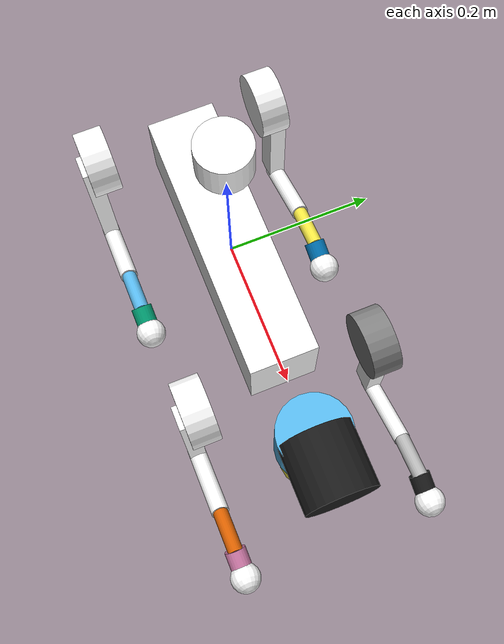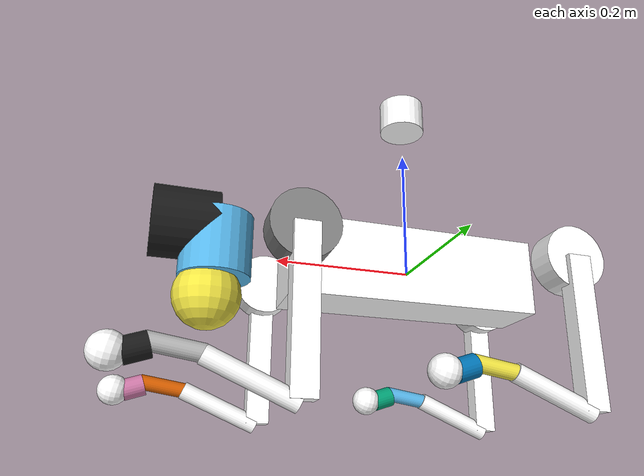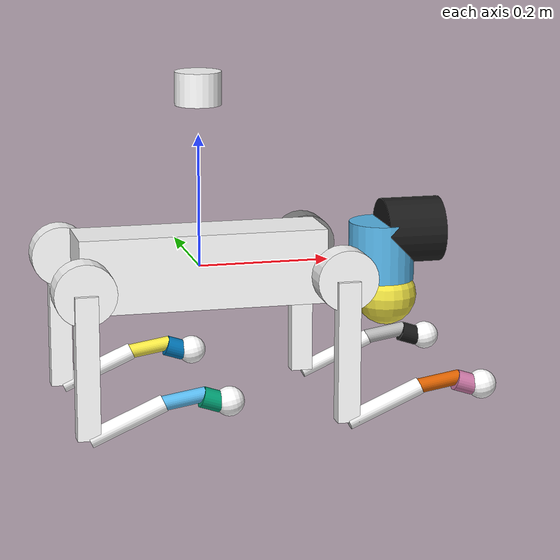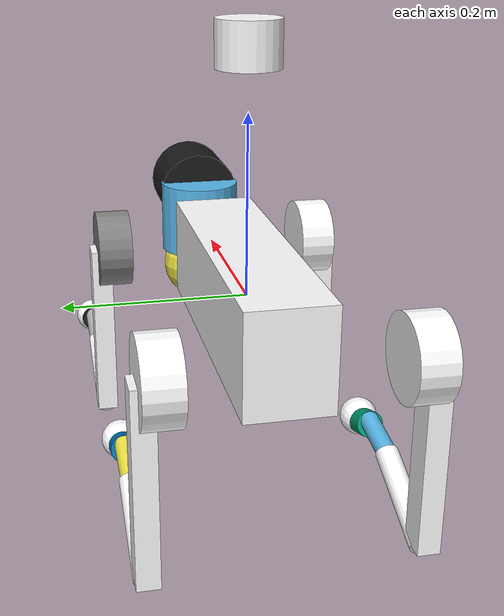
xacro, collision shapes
<?xml version="1.0" encoding="utf-8"?>
<robot name="go2" xmlns:xacro="http://www.ros.org/wiki/xacro">

  <xacro:arg name="camera_name"   default="zed"/>
  <xacro:arg name="camera_model"  default="zed2i"/>   <!-- zed, zed2i, zedm, zedx, zedxm … -->
  <xacro:arg name="use_zed_localization" default="false"/>

  <link
    name="base_link">
    <inertial>
      <origin
        xyz="0.021112 0 -0.005366"
        rpy="0 0 0" />
      <mass
        value="6.921" />
      <inertia
        ixx="0.02448"
        ixy="0.00012166"
        ixz="0.0014849"
        iyy="0.098077"
        iyz="-3.12E-05"
        izz="0.107" />
    </inertial>
    <visual>
      <origin
        xyz="0 0 0"
        rpy="0 0 0" />
      <geometry>
        <mesh
          filename="package://go2_description/dae/base.dae" />
      </geometry>
      <material
        name="black">
        <color
          rgba="1 1 1 1" />
      </material>
    </visual>
    <collision>
      <origin rpy="0 0 0" xyz="0 0 0" />
      <geometry>
        <box size="0.3762 0.0935 0.114" />
      </geometry>
    </collision>
  </link>

  <link
    name="Head_upper">
    <inertial>
      <origin
        xyz="0 0 0"
        rpy="0 0 0" />
      <mass
        value="0.001" />
      <inertia
        ixx="9.6e-06"
        ixy="0"
        ixz="0"
        iyy="9.6e-06"
        iyz="0"
        izz="9.6e-06" />
    </inertial>
    <collision>
      <origin
        xyz="0 0 0"
        rpy="0 0 0" />
      <geometry>
        <cylinder radius="0.05" length="0.09" />
      </geometry>
    </collision>
  </link>
  <joint
    name="Head_upper_joint"
    type="fixed" dont_collapse="true">
    <origin
      xyz="0.285 0 0.01"
      rpy="0 0 0" />
    <parent
      link="base_link" />
    <child
      link="Head_upper" />
    <axis
      xyz="0 0 0" />
  </joint>
  <link name="front_camera">
    <visual>
      <origin xyz="0 0 0" rpy="0 0 0" />
      <geometry>
        <cylinder radius="0.01" length="0.01" />
      </geometry>
      <material name="camera_color">
        <color rgba="0.1 0.1 0.1 1" />
      </material>
    </visual>
    <collision>
      <origin xyz="0 0 0" rpy="0 0 0" />
      <geometry>
        <cylinder radius="0.05" length="0.09" />
      </geometry>
    </collision>
  </link>
  <joint name="front_camera_joint" type="fixed">
    <origin xyz="0.045 0 0.03" rpy="-1.5708 0 -1.5708" />
    <parent link="Head_upper" />
    <child link="front_camera" />
    <axis xyz="0 0 0" />
  </joint>
  <link
    name="Head_lower">
    <inertial>
      <origin
        xyz="0 0 0"
        rpy="0 0 0" />
      <mass
        value="0.001" />
      <inertia
        ixx="9.6e-06"
        ixy="0"
        ixz="0"
        iyy="9.6e-06"
        iyz="0"
        izz="9.6e-06" />
    </inertial>
    <collision>
      <origin
        xyz="0 0 0"
        rpy="0 0 0" />
      <geometry>
        <sphere radius="0.047" />
      </geometry>
    </collision>
  </link>
  <joint
    name="Head_lower_joint"
    type="fixed" dont_collapse="true">
    <origin
      xyz="0.008 0 -0.07"
      rpy="0 0 0" />
    <parent
      link="Head_upper" />
    <child
      link="Head_lower" />
    <axis
      xyz="0 0 0" />
  </joint>
  <link
    name="FL_hip">
    <inertial>
      <origin
        xyz="-0.0054 0.00194 -0.000105"
        rpy="0 0 0" />
      <mass
        value="0.678" />
      <inertia
        ixx="0.00048"
        ixy="-3.01E-06"
        ixz="1.11E-06"
        iyy="0.000884"
        iyz="-1.42E-06"
        izz="0.000596" />
    </inertial>
    <visual>
      <origin
        xyz="0 0 0"
        rpy="0 0 0" />
      <geometry>
        <mesh
          filename="package://go2_description/dae/hip.dae" />
      </geometry>
      <material
        name="grey">
        <color
          rgba="0.5 0.5 0.5 1" />
      </material>
    </visual>
    <collision>
      <origin rpy="1.5707963267948966 0 0" xyz="0 0.08 0" />
      <geometry>
        <cylinder length="0.04" radius="0.046" />
      </geometry>
    </collision>
  </link>
  <joint
    name="FL_hip_joint"
    type="revolute">
    <origin
      xyz="0.1934 0.0465 0"
      rpy="0 0 0" />
    <parent
      link="base_link" />
    <child
      link="FL_hip" />
    <axis
      xyz="1 0 0" />
    <limit
      lower="-1.0472"
      upper="1.0472"
      effort="23.7"
      velocity="30.1" />
  </joint>
  <link
    name="FL_thigh">
    <inertial>
      <origin
        xyz="-0.00374 -0.0223 -0.0327"
        rpy="0 0 0" />
      <mass
        value="1.152" />
      <inertia
        ixx="0.00584"
        ixy="8.72E-05"
        ixz="-0.000289"
        iyy="0.0058"
        iyz="0.000808"
        izz="0.00103" />
    </inertial>
    <visual>
      <origin
        xyz="0 0 0"
        rpy="0 0 0" />
      <geometry>
        <mesh
          filename="package://go2_description/dae/thigh.dae" />
      </geometry>
      <material
        name="">
        <color
          rgba="1 1 1 1" />
      </material>
    </visual>
    <collision>
      <origin rpy="0 1.5707963267948966 0" xyz="0 0 -0.1065" />
      <geometry>
        <box size="0.213 0.0245 0.034" />
      </geometry>
    </collision>
  </link>
  <joint
    name="FL_thigh_joint"
    type="revolute">
    <origin
      xyz="0 0.0955 0"
      rpy="0 0 0" />
    <parent
      link="FL_hip" />
    <child
      link="FL_thigh" />
    <axis
      xyz="0 1 0" />
    <limit
      lower="-1.5708"
      upper="3.4907"
      effort="23.7"
      velocity="30.1" />
  </joint>
  <link
    name="FL_calf">
    <inertial>
      <origin
        xyz="0.00548 -0.000975 -0.115"
        rpy="0 0 0" />
      <mass
        value="0.154" />
      <inertia
        ixx="0.00108"
        ixy="3.4E-07"
        ixz="1.72E-05"
        iyy="0.0011"
        iyz="8.28E-06"
        izz="3.29E-05" />
    </inertial>
    <visual>
      <origin
        xyz="0 0 0"
        rpy="0 0 0" />
      <geometry>
        <mesh
          filename="package://go2_description/dae/calf.dae" />
      </geometry>
      <material
        name="">
        <color
          rgba="1 1 1 1" />
      </material>
    </visual>
    <collision>
      <origin rpy="0 -0.21 0" xyz="0.008 0 -0.06" />
      <geometry>
        <cylinder length="0.12" radius="0.012" />
      </geometry>
    </collision>
  </link>
  <joint
    name="FL_calf_joint"
    type="revolute">
    <origin
      xyz="0 0 -0.213"
      rpy="0 0 0" />
    <parent
      link="FL_thigh" />
    <child
      link="FL_calf" />
    <axis
      xyz="0 1 0" />
    <limit
      lower="-2.7227"
      upper="-0.83776"
      effort="45.43"
      velocity="15.70" />
  </joint>
  <link
    name="FL_calflower">
    <collision>
      <origin rpy="0 0 0" xyz="0 0 0" />
      <geometry>
        <cylinder length="0.065" radius="0.011" />
      </geometry>
    </collision>
  </link>
  <joint
    name="FL_calflower_joint"
    type="fixed">
    <origin
      xyz="0.020 0 -0.148"
      rpy="0 0.05 0" />
    <parent
      link="FL_calf" />
    <child
      link="FL_calflower" />
    <axis
      xyz="0 0 0" />
  </joint>
  <link
    name="FL_calflower1">
    <visual>
      <origin xyz="0 0 0" rpy="0 0 0" />
      <geometry>
        <cylinder length="0.03" radius="0.0155" />
      </geometry>
      <material name="camera_color">
        <color rgba="0.1 0.1 0.1 1" />
      </material>
    </visual>
    <collision>
      <origin rpy="0 0 0" xyz="0 0 0" />
      <geometry>
        <cylinder length="0.03" radius="0.0155" />
      </geometry>
    </collision>
  </link>
  <joint
    name="FL_calflower1_joint"
    type="fixed">
    <origin
      xyz="-0.01 0 -0.04"
      rpy="0 0.48 0" />
    <parent
      link="FL_calflower" />
    <child
      link="FL_calflower1" />
    <axis
      xyz="0 0 0" />
  </joint>
  <link
    name="FL_foot">
    <inertial>
      <origin
        xyz="0 0 0"
        rpy="0 0 0" />
      <mass
        value="0.04" />
      <inertia
        ixx="9.6e-06"
        ixy="0"
        ixz="0"
        iyy="9.6e-06"
        iyz="0"
        izz="9.6e-06" />
    </inertial>
    <visual>
      <origin
        xyz="0 0 0"
        rpy="0 0 0" />
      <geometry>
        <mesh
          filename="package://go2_description/dae/foot.dae" />
      </geometry>
      <material
        name="">
        <color
          rgba="1 1 1 1" />
      </material>
    </visual>
    <collision>
      <origin rpy="0 0 0" xyz="-0.002 0 0" />
      <geometry>
        <sphere radius="0.022" />
      </geometry>
    </collision>
  </link>
  <joint
    name="FL_foot_joint"
    type="fixed" dont_collapse="true">
    <origin
      xyz="0 0 -0.213"
      rpy="0 0 0" />
    <parent
      link="FL_calf" />
    <child
      link="FL_foot" />
    <axis
      xyz="0 0 0" />
  </joint>
  <link
    name="FR_hip">
    <inertial>
      <origin
        xyz="-0.0054 -0.00194 -0.000105"
        rpy="0 0 0" />
      <mass
        value="0.678" />
      <inertia
        ixx="0.00048"
        ixy="3.01E-06"
        ixz="1.11E-06"
        iyy="0.000884"
        iyz="1.42E-06"
        izz="0.000596" />
    </inertial>
    <visual>
      <origin
        xyz="0 0 0"
        rpy="3.1415 0 0" />
      <geometry>
        <mesh
          filename="package://go2_description/dae/hip.dae" />
      </geometry>
      <material
        name="">
        <color
          rgba="1 1 1 1" />
      </material>
    </visual>
    <collision>
      <origin rpy="1.5707963267948966 0 0" xyz="0 -0.08 0" />
      <geometry>
        <cylinder length="0.04" radius="0.046" />
      </geometry>
    </collision>
  </link>
  <joint
    name="FR_hip_joint"
    type="revolute">
    <origin
      xyz="0.1934 -0.0465 0"
      rpy="0 0 0" />
    <parent
      link="base_link" />
    <child
      link="FR_hip" />
    <axis
      xyz="1 0 0" />
    <limit
      lower="-1.0472"
      upper="1.0472"
      effort="23.7"
      velocity="30.1" />
  </joint>
  <link
    name="FR_thigh">
    <inertial>
      <origin
        xyz="-0.00374 0.0223 -0.0327"
        rpy="0 0 0" />
      <mass
        value="1.152" />
      <inertia
        ixx="0.00584"
        ixy="-8.72E-05"
        ixz="-0.000289"
        iyy="0.0058"
        iyz="-0.000808"
        izz="0.00103" />
    </inertial>
    <visual>
      <origin
        xyz="0 0 0"
        rpy="0 0 0" />
      <geometry>
        <mesh
          filename="package://go2_description/dae/thigh_mirror.dae" />
      </geometry>
      <material
        name="">
        <color
          rgba="1 1 1 1" />
      </material>
    </visual>
    <collision>
      <origin rpy="0 1.5707963267948966 0" xyz="0 0 -0.1065" />
      <geometry>
        <box size="0.213 0.0245 0.034" />
      </geometry>
    </collision>
  </link>
  <joint
    name="FR_thigh_joint"
    type="revolute">
    <origin
      xyz="0 -0.0955 0"
      rpy="0 0 0" />
    <parent
      link="FR_hip" />
    <child
      link="FR_thigh" />
    <axis
      xyz="0 1 0" />
    <limit
      lower="-1.5708"
      upper="3.4907"
      effort="23.7"
      velocity="30.1" />
  </joint>
  <link
    name="FR_calf">
    <inertial>
      <origin
        xyz="0.00548 0.000975 -0.115"
        rpy="0 0 0" />
      <mass
        value="0.154" />
      <inertia
        ixx="0.00108"
        ixy="-3.4E-07"
        ixz="1.72E-05"
        iyy="0.0011"
        iyz="-8.28E-06"
        izz="3.29E-05" />
    </inertial>
    <visual>
      <origin
        xyz="0 0 0"
        rpy="0 0 0" />
      <geometry>
        <mesh
          filename="package://go2_description/dae/calf_mirror.dae" />
      </geometry>
      <material
        name="">
        <color
          rgba="1 1 1 1" />
      </material>
    </visual>
    <collision>
      <origin rpy="0 -0.2 0" xyz="0.01 0 -0.06" />
      <geometry>
        <cylinder length="0.12" radius="0.013" />
      </geometry>
    </collision>
  </link>
  <joint
    name="FR_calf_joint"
    type="revolute">
    <origin
      xyz="0 0 -0.213"
      rpy="0 0 0" />
    <parent
      link="FR_thigh" />
    <child
      link="FR_calf" />
    <axis
      xyz="0 1 0" />
    <limit
      lower="-2.7227"
      upper="-0.83776"
      effort="45.43"
      velocity="15.70" />
  </joint>
  <link
    name="FR_calflower">
    <collision>
      <origin rpy="0 0 0" xyz="0 0 0" />
      <geometry>
        <cylinder length="0.065" radius="0.011" />
      </geometry>
    </collision>
  </link>
  <joint
    name="FR_calflower_joint"
    type="fixed">
    <origin
      xyz="0.020 0 -0.148"
      rpy="0 0.05 0" />
    <parent
      link="FR_calf" />
    <child
      link="FR_calflower" />
    <axis
      xyz="0 0 0" />
  </joint>
  <link
    name="FR_calflower1">
    <collision>
      <origin rpy="0 0 0" xyz="0 0 0" />
      <geometry>
        <cylinder length="0.03" radius="0.0155" />
      </geometry>
    </collision>
  </link>
  <joint
    name="FR_calflower1_joint"
    type="fixed">
    <origin
      xyz="-0.01 0 -0.04"
      rpy="0 0.48 0" />
    <parent
      link="FR_calflower" />
    <child
      link="FR_calflower1" />
    <axis
      xyz="0 0 0" />
  </joint>
  <link
    name="FR_foot">
    <inertial>
      <origin
        xyz="0 0 0"
        rpy="0 0 0" />
      <mass
        value="0.04" />
      <inertia
        ixx="9.6e-06"
        ixy="0"
        ixz="0"
        iyy="9.6e-06"
        iyz="0"
        izz="9.6e-06" />
    </inertial>
    <visual>
      <origin
        xyz="0 0 0"
        rpy="0 0 0" />
      <geometry>
        <mesh
          filename="package://go2_description/dae/foot.dae" />
      </geometry>
      <material
        name="">
        <color
          rgba="1 1 1 1" />
      </material>
    </visual>
    <collision>
      <origin rpy="0 0 0" xyz="-0.002 0 0" />
      <geometry>
        <sphere radius="0.022" />
      </geometry>
    </collision>
  </link>
  <joint
    name="FR_foot_joint"
    type="fixed" dont_collapse="true">
    <origin
      xyz="0 0 -0.213"
      rpy="0 0 0" />
    <parent
      link="FR_calf" />
    <child
      link="FR_foot" />
    <axis
      xyz="0 0 0" />
  </joint>
  <link
    name="RL_hip">
    <inertial>
      <origin
        xyz="0.0054 0.00194 -0.000105"
        rpy="0 0 0" />
      <mass
        value="0.678" />
      <inertia
        ixx="0.00048"
        ixy="3.01E-06"
        ixz="-1.11E-06"
        iyy="0.000884"
        iyz="-1.42E-06"
        izz="0.000596" />
    </inertial>
    <visual>
      <origin
        xyz="0 0 0"
        rpy="0 3.1415 0" />
      <geometry>
        <mesh
          filename="package://go2_description/dae/hip.dae" />
      </geometry>
      <material
        name="">
        <color
          rgba="1 1 1 1" />
      </material>
    </visual>
    <collision>
      <origin rpy="1.5707963267948966 0 0" xyz="0 0.08 0" />
      <geometry>
        <cylinder length="0.04" radius="0.046" />
      </geometry>
    </collision>
  </link>
  <joint
    name="RL_hip_joint"
    type="revolute">
    <origin
      xyz="-0.1934 0.0465 0"
      rpy="0 0 0" />
    <parent
      link="base_link" />
    <child
      link="RL_hip" />
    <axis
      xyz="1 0 0" />
    <limit
      lower="-1.0472"
      upper="1.0472"
      effort="23.7"
      velocity="30.1" />
  </joint>
  <link
    name="RL_thigh">
    <inertial>
      <origin
        xyz="-0.00374 -0.0223 -0.0327"
        rpy="0 0 0" />
      <mass
        value="1.152" />
      <inertia
        ixx="0.00584"
        ixy="8.72E-05"
        ixz="-0.000289"
        iyy="0.0058"
        iyz="0.000808"
        izz="0.00103" />
    </inertial>
    <visual>
      <origin
        xyz="0 0 0"
        rpy="0 0 0" />
      <geometry>
        <mesh
          filename="package://go2_description/dae/thigh.dae" />
      </geometry>
      <material
        name="">
        <color
          rgba="1 1 1 1" />
      </material>
    </visual>
    <collision>
      <origin rpy="0 1.5707963267948966 0" xyz="0 0 -0.1065" />
      <geometry>
        <box size="0.213 0.0245 0.034" />
      </geometry>
    </collision>
  </link>
  <joint
    name="RL_thigh_joint"
    type="revolute">
    <origin
      xyz="0 0.0955 0"
      rpy="0 0 0" />
    <parent
      link="RL_hip" />
    <child
      link="RL_thigh" />
    <axis
      xyz="0 1 0" />
    <limit
      lower="-0.5236"
      upper="4.5379"
      effort="23.7"
      velocity="30.1" />
  </joint>
  <link
    name="RL_calf">
    <inertial>
      <origin
        xyz="0.00548 -0.000975 -0.115"
        rpy="0 0 0" />
      <mass
        value="0.154" />
      <inertia
        ixx="0.00108"
        ixy="3.4E-07"
        ixz="1.72E-05"
        iyy="0.0011"
        iyz="8.28E-06"
        izz="3.29E-05" />
    </inertial>
    <visual>
      <origin
        xyz="0 0 0"
        rpy="0 0 0" />
      <geometry>
        <mesh
          filename="package://go2_description/dae/calf.dae" />
      </geometry>
      <material
        name="">
        <color
          rgba="1 1 1 1" />
      </material>
    </visual>
    <collision>
      <origin rpy="0 -0.2 0" xyz="0.01 0 -0.06" />
      <geometry>
        <cylinder length="0.12" radius="0.013" />
      </geometry>
    </collision>
  </link>
  <joint
    name="RL_calf_joint"
    type="revolute">
    <origin
      xyz="0 0 -0.213"
      rpy="0 0 0" />
    <parent
      link="RL_thigh" />
    <child
      link="RL_calf" />
    <axis
      xyz="0 1 0" />
    <limit
      lower="-2.7227"
      upper="-0.83776"
      effort="45.43"
      velocity="15.70" />
  </joint>
  <link
    name="RL_calflower">
    <collision>
      <origin rpy="0 0 0" xyz="0 0 0" />
      <geometry>
        <cylinder length="0.065" radius="0.011" />
      </geometry>
    </collision>
  </link>
  <joint
    name="RL_calflower_joint"
    type="fixed">
    <origin
      xyz="0.020 0 -0.148"
      rpy="0 0.05 0" />
    <parent
      link="RL_calf" />
    <child
      link="RL_calflower" />
    <axis
      xyz="0 0 0" />
  </joint>
  <link
    name="RL_calflower1">
    <collision>
      <origin rpy="0 0 0" xyz="0 0 0" />
      <geometry>
        <cylinder length="0.03" radius="0.0155" />
      </geometry>
    </collision>
  </link>
  <joint
    name="RL_calflower1_joint"
    type="fixed">
    <origin
      xyz="-0.01 0 -0.04"
      rpy="0 0.48 0" />
    <parent
      link="RL_calflower" />
    <child
      link="RL_calflower1" />
    <axis
      xyz="0 0 0" />
  </joint>
  <link
    name="RL_foot">
    <inertial>
      <origin
        xyz="0 0 0"
        rpy="0 0 0" />
      <mass
        value="0.04" />
      <inertia
        ixx="9.6e-06"
        ixy="0"
        ixz="0"
        iyy="9.6e-06"
        iyz="0"
        izz="9.6e-06" />
    </inertial>
    <visual>
      <origin
        xyz="0 0 0"
        rpy="0 0 0" />
      <geometry>
        <mesh
          filename="package://go2_description/dae/foot.dae" />
      </geometry>
      <material
        name="">
        <color
          rgba="1 1 1 1" />
      </material>
    </visual>
    <collision>
      <origin rpy="0 0 0" xyz="-0.002 0 0" />
      <geometry>
        <sphere radius="0.022" />
      </geometry>
    </collision>
  </link>
  <joint
    name="RL_foot_joint"
    type="fixed" dont_collapse="true">
    <origin
      xyz="0 0 -0.213"
      rpy="0 0 0" />
    <parent
      link="RL_calf" />
    <child
      link="RL_foot" />
    <axis
      xyz="0 0 0" />
  </joint>
  <link
    name="RR_hip">
    <inertial>
      <origin
        xyz="0.0054 -0.00194 -0.000105"
        rpy="0 0 0" />
      <mass
        value="0.678" />
      <inertia
        ixx="0.00048"
        ixy="-3.01E-06"
        ixz="-1.11E-06"
        iyy="0.000884"
        iyz="1.42E-06"
        izz="0.000596" />
    </inertial>
    <visual>
      <origin
        xyz="0 0 0"
        rpy="3.1415 3.1415 0" />
      <geometry>
        <mesh
          filename="package://go2_description/dae/hip.dae" />
      </geometry>
      <material
        name="">
        <color
          rgba="1 1 1 1" />
      </material>
    </visual>
    <collision>
      <origin rpy="1.5707963267948966 0 0" xyz="0 -0.08 0" />
      <geometry>
        <cylinder length="0.04" radius="0.046" />
      </geometry>
    </collision>
  </link>
  <joint
    name="RR_hip_joint"
    type="revolute">
    <origin
      xyz="-0.1934 -0.0465 0"
      rpy="0 0 0" />
    <parent
      link="base_link" />
    <child
      link="RR_hip" />
    <axis
      xyz="1 0 0" />
    <limit
      lower="-1.0472"
      upper="1.0472"
      effort="23.7"
      velocity="30.1" />
  </joint>
  <link
    name="RR_thigh">
    <inertial>
      <origin
        xyz="-0.00374 0.0223 -0.0327"
        rpy="0 0 0" />
      <mass
        value="1.152" />
      <inertia
        ixx="0.00584"
        ixy="-8.72E-05"
        ixz="-0.000289"
        iyy="0.0058"
        iyz="-0.000808"
        izz="0.00103" />
    </inertial>
    <visual>
      <origin
        xyz="0 0 0"
        rpy="0 0 0" />
      <geometry>
        <mesh
          filename="package://go2_description/dae/thigh_mirror.dae" />
      </geometry>
      <material
        name="">
        <color
          rgba="1 1 1 1" />
      </material>
    </visual>
    <collision>
      <origin rpy="0 1.5707963267948966 0" xyz="0 0 -0.1065" />
      <geometry>
        <box size="0.213 0.0245 0.034" />
      </geometry>
    </collision>
  </link>
  <joint
    name="RR_thigh_joint"
    type="revolute">
    <origin
      xyz="0 -0.0955 0"
      rpy="0 0 0" />
    <parent
      link="RR_hip" />
    <child
      link="RR_thigh" />
    <axis
      xyz="0 1 0" />
    <limit
      lower="-0.5236"
      upper="4.5379"
      effort="23.7"
      velocity="30.1" />
  </joint>
  <link
    name="RR_calf">
    <inertial>
      <origin
        xyz="0.00548 0.000975 -0.115"
        rpy="0 0 0" />
      <mass
        value="0.154" />
      <inertia
        ixx="0.00108"
        ixy="-3.4E-07"
        ixz="1.72E-05"
        iyy="0.0011"
        iyz="-8.28E-06"
        izz="3.29E-05" />
    </inertial>
    <visual>
      <origin
        xyz="0 0 0"
        rpy="0 0 0" />
      <geometry>
        <mesh
          filename="package://go2_description/dae/calf_mirror.dae" />
      </geometry>
      <material
        name="">
        <color
          rgba="1 1 1 1" />
      </material>
    </visual>
    <collision>
      <origin rpy="0 -0.2 0" xyz="0.01 0 -0.06" />
      <geometry>
        <cylinder length="0.12" radius="0.013" />
      </geometry>
    </collision>
  </link>
  <joint
    name="RR_calf_joint"
    type="revolute">
    <origin
      xyz="0 0 -0.213"
      rpy="0 0 0" />
    <parent
      link="RR_thigh" />
    <child
      link="RR_calf" />
    <axis
      xyz="0 1 0" />
    <limit
      lower="-2.7227"
      upper="-0.83776"
      effort="45.43"
      velocity="15.70" />
  </joint>
  <link
    name="RR_calflower">
    <collision>
      <origin rpy="0 0 0" xyz="0 0 0" />
      <geometry>
        <cylinder length="0.065" radius="0.011" />
      </geometry>
    </collision>
  </link>
  <joint
    name="RR_calflower_joint"
    type="fixed">
    <origin
      xyz="0.020 0 -0.148"
      rpy="0 0.05 0" />
    <parent
      link="RR_calf" />
    <child
      link="RR_calflower" />
    <axis
      xyz="0 0 0" />
  </joint>
  <link
    name="RR_calflower1">
    <collision>
      <origin rpy="0 0 0" xyz="0 0 0" />
      <geometry>
        <cylinder length="0.03" radius="0.0155" />
      </geometry>
    </collision>
  </link>
  <joint
    name="RR_calflower1_joint"
    type="fixed">
    <origin
      xyz="-0.01 0 -0.04"
      rpy="0 0.48 0" />
    <parent
      link="RR_calflower" />
    <child
      link="RR_calflower1" />
    <axis
      xyz="0 0 0" />
  </joint>
  <link
    name="RR_foot">
    <inertial>
      <origin
        xyz="0 0 0"
        rpy="0 0 0" />
      <mass
        value="0.04" />
      <inertia
        ixx="9.6e-06"
        ixy="0"
        ixz="0"
        iyy="9.6e-06"
        iyz="0"
        izz="9.6e-06" />
    </inertial>
    <visual>
      <origin
        xyz="0 0 0"
        rpy="0 0 0" />
      <geometry>
        <mesh
          filename="package://go2_description/dae/foot.dae" />
      </geometry>
      <material
        name="">
        <color
          rgba="1 1 1 1" />
      </material>
    </visual>
    <collision>
      <origin rpy="0 0 0" xyz="-0.002 0 0" />
      <geometry>
        <sphere radius="0.022" />
      </geometry>
    </collision>
  </link>
  <joint
    name="RR_foot_joint"
    type="fixed" dont_collapse="true">
    <origin
      xyz="0 0 -0.213"
      rpy="0 0 0" />
    <parent
      link="RR_calf" />
    <child
      link="RR_foot" />
    <axis
      xyz="0 0 0" />
  </joint>
  <link
    name="utlidar_imu">
    <inertial>
      <origin
        xyz="0 0 0"
        rpy="0 0 0" />
      <mass
        value="0" />
      <inertia
        ixx="0"
        ixy="0"
        ixz="0"
        iyy="0"
        iyz="0"
        izz="0" />
    </inertial>
  </link>
  <joint
    name="utlidar_imu_joint"
    type="fixed">
    <origin
      xyz="-0.02557 0 0.04232"
      rpy="0 0 0" />
    <parent
      link="base_link" />
    <child
      link="utlidar_imu" />
    <axis
      xyz="0 0 0" />
  </joint>
  <link
    name="radar">
    <inertial>
      <origin
        xyz="0 0 0"
        rpy="0 0 0" />
      <mass
        value="0" />
      <inertia
        ixx="0"
        ixy="0"
        ixz="0"
        iyy="0"
        iyz="0"
        izz="0" />
    </inertial>
  </link>
  <joint
    name="radar_joint"
    type="fixed">
    <origin
      xyz="0.28945 0 -0.046825"
      rpy="0 2.8782 0" />
    <parent
      link="base_link" />
    <child
      link="radar" />
    <axis
      xyz="0 0 0" />
  </joint>

  <link
    name="gps">
    <inertial>
      <origin
        xyz="0 0 0"
        rpy="0 0 0" />
      <mass
        value="0" />
      <inertia
        ixx="0"
        ixy="0"
        ixz="0"
        iyy="0"
        iyz="0"
        izz="0" />
    </inertial>
  </link>

  <joint
    name="gps_joint"
    type="fixed">
    <origin
      xyz="0.290 0 0.155"
      rpy="0 0 0" />
    <parent
      link="base_link" />
    <child
      link="gps" />
    <axis
      xyz="0 0 0" />
  </joint>

  <link name="laser">
    <visual>
      <origin xyz="0 0 0" rpy="0 0 0" />
      <geometry>
        <cylinder radius="0.035" length="0.055" />
      </geometry>
      <material name="">
        <color rgba="1 1 1 1" />
      </material>
    </visual>
    <collision>
      <origin xyz="0 0 0" rpy="0 0 0" />
      <geometry>
        <cylinder radius="0.035" length="0.05" />
      </geometry>
    </collision>
  </link>

  <joint name="laser_joint" type="fixed">
    <parent link="base_link"/>
    <child link="laser"/>
    <origin xyz="0 0 0.27" rpy="0 0 3.14"/>
  </joint>

  <!-- Remember to uncomment everything below when using ZED  -->

  <!-- ZED publishes TF -> base_link (we don't use this) -->

  <!-- EKF publishes odom, camera is child of base_link -->

</robot>
